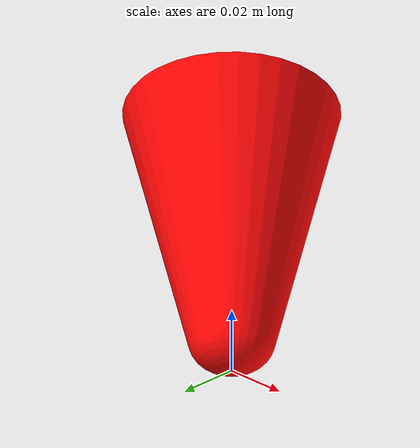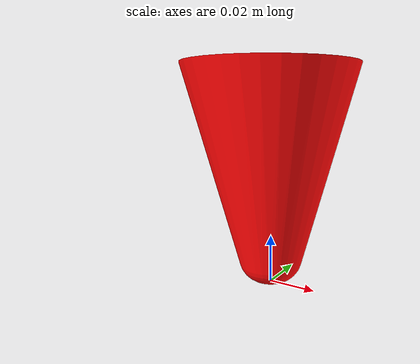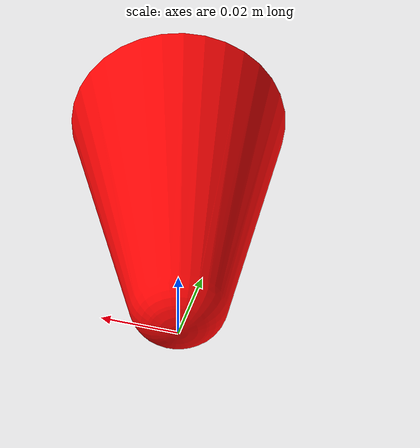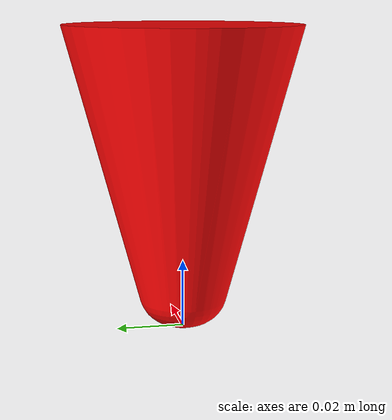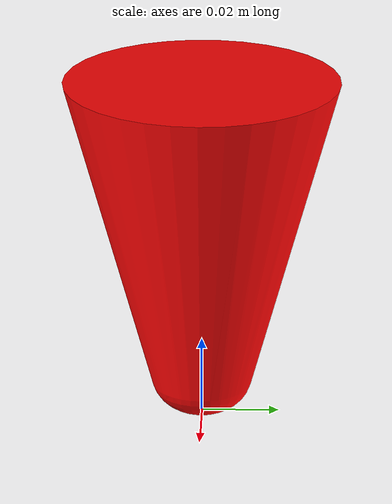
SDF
<?xml version="1.0"?>
<sdf version="1.9">
  <model name="shuttle">
    <static>false</static>
    <self_collide>false</self_collide>
    <allow_auto_disable>true</allow_auto_disable>

    <link name="shuttle_link">
      <inertial>
        <pose>0 0 0.0296 0 0 0</pose>
        <mass>0.050</mass>
        <inertia>
          <ixx>6.57e-5</ixx>
          <iyy>6.57e-5</iyy>
          <izz>7.37e-5</izz>
          <ixy>0.0</ixy>
          <ixz>0.0</ixz>
          <iyz>0.0</iyz>
        </inertia>
      </inertial>

      <velocity_decay>
        <linear>3.0</linear>
        <angular>5.0</angular>
      </velocity_decay>

      <!-- Fast visual: keep the simplified mesh but make it bright red so
           spawned shuttles are easy to see during coverage testing. -->
      <visual name="shuttle_visual_fast">
        <geometry>
          <mesh><uri>model://shuttle/meshes/shuttle_collision.STL</uri></mesh>
        </geometry>
        <material>
          <ambient>1.0 0.02 0.02 1.0</ambient>
          <diffuse>1.0 0.02 0.02 1.0</diffuse>
          <specular>0.05 0.00 0.00 1.0</specular>
          <emissive>0.15 0.00 0.00 1.0</emissive>
          <pbr><metal><metalness>0.0</metalness><roughness>0.85</roughness></metal></pbr>
        </material>
      </visual>

      <!-- Fast collision: simple shuttle bounding box, 68 x 68 x 90 mm. -->
      <collision name="shuttle_collision">
        <max_contacts>8</max_contacts>
        <geometry>
          <box>
            <size>0.068 0.068 0.090</size>
          </box>
        </geometry>
        <surface>
          <friction>
            <ode>
              <mu>1.2</mu>
              <mu2>1.2</mu2>
            </ode>
          </friction>
          <bounce>
            <restitution_coefficient>0.0</restitution_coefficient>
            <threshold>1000000.0</threshold>
          </bounce>
          <contact>
            <collide_without_contact>false</collide_without_contact>
            <category_bitmask>0x0002</category_bitmask>
            <collide_bitmask>0xFFFD</collide_bitmask>
          </contact>
        </surface>
      </collision>
    </link>
  </model>
</sdf>
